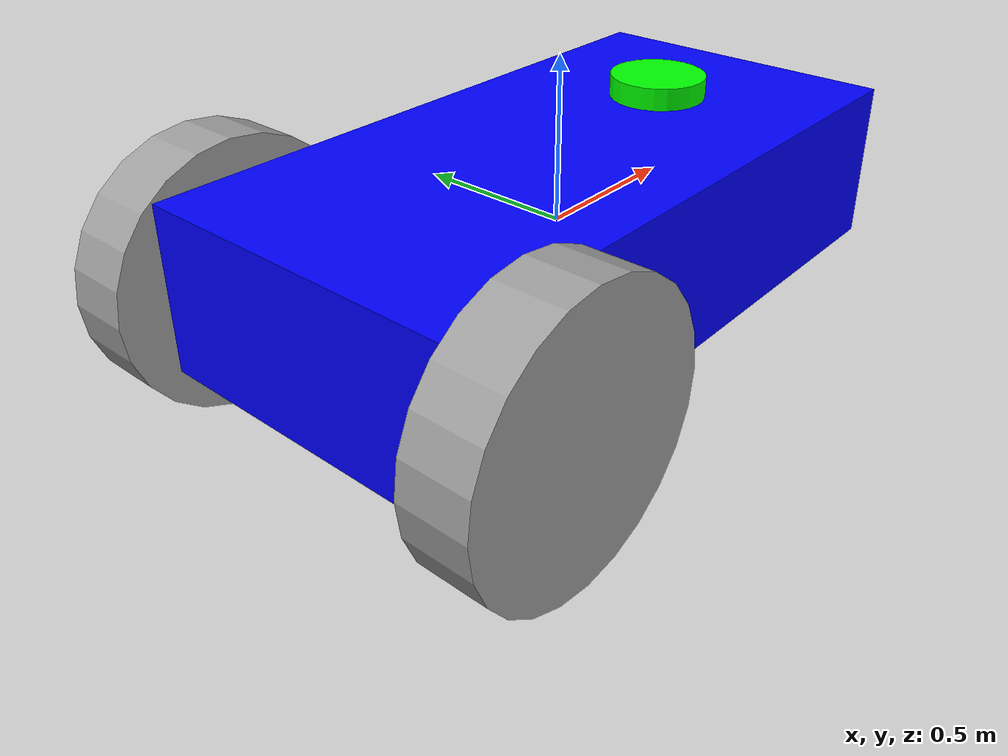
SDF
<sdf version='1.11'>
  <model name='sam_bot'>
    <link name='base_link'>
      <inertial>
        <pose>0.31373248067024662 0 -0.098709864301789241 0 0 0</pose>
        <mass>2.2439499999999999</mass>
        <inertia>
          <ixx>7.7400872650571539</ixx>
          <ixy>0</ixy>
          <ixz>0.079758255531540367</ixz>
          <iyy>8.2579235986653003</iyy>
          <iyz>0</iyz>
          <izz>0.72461933360814645</izz>
        </inertia>
      </inertial>
      <collision name='base_link_collision'>
        <pose>0 0 0 0 0 0</pose>
        <geometry>
          <box>
            <size>2 1 0.5</size>
          </box>
        </geometry>
        <surface>
          <contact>
            <ode/>
          </contact>
          <friction>
            <ode/>
          </friction>
        </surface>
      </collision>
      <collision name='base_link_fixed_joint_lump__lidar_link_collision_1'>
        <pose>0.5 0 0.28499999999999998 0 0 0</pose>
        <geometry>
          <cylinder>
            <length>0.070000000000000007</length>
            <radius>0.14999999999999999</radius>
          </cylinder>
        </geometry>
        <surface>
          <contact>
            <ode/>
          </contact>
          <friction>
            <ode/>
          </friction>
        </surface>
      </collision>
      <visual name='base_link_visual'>
        <pose>0 0 0 0 0 0</pose>
        <geometry>
          <box>
            <size>2 1 0.5</size>
          </box>
        </geometry>
        <material>
          <diffuse>0 0 1 1</diffuse>
          <ambient>0 0 1 1</ambient>
        </material>
      </visual>
      <visual name='base_link_fixed_joint_lump__front_caster_visual_1'>
        <pose>0.65400000000000003 0 -0.25 0 0 0</pose>
        <geometry>
          <sphere>
            <radius>0.20000000000000001</radius>
          </sphere>
        </geometry>
        <material>
          <diffuse>1 0 0 1</diffuse>
          <ambient>1 0 0 1</ambient>
        </material>
      </visual>
      <visual name='base_link_fixed_joint_lump__lidar_link_visual_2'>
        <pose>0.5 0 0.28499999999999998 0 0 0</pose>
        <geometry>
          <cylinder>
            <length>0.070000000000000007</length>
            <radius>0.14999999999999999</radius>
          </cylinder>
        </geometry>
        <material>
          <diffuse>0 1 0 1</diffuse>
          <ambient>0 1 0 1</ambient>
        </material>
      </visual>
      <sensor name='imu_sensor' type='imu'>
        <always_on>true</always_on>
        <topic>base_imu</topic>
        <visualize>true</visualize>
        <imu>
          <angular_velocity>
            <x>
              <noise type='gaussian'>
                <mean>0</mean>
                <stddev>0.00020000000000000001</stddev>
                <bias_mean>7.5000000000000002e-06</bias_mean>
                <bias_stddev>7.9999999999999996e-07</bias_stddev>
              </noise>
            </x>
            <y>
              <noise type='gaussian'>
                <mean>0</mean>
                <stddev>0.00020000000000000001</stddev>
                <bias_mean>7.5000000000000002e-06</bias_mean>
                <bias_stddev>7.9999999999999996e-07</bias_stddev>
              </noise>
            </y>
            <z>
              <noise type='gaussian'>
                <mean>0</mean>
                <stddev>0.00020000000000000001</stddev>
                <bias_mean>7.5000000000000002e-06</bias_mean>
                <bias_stddev>7.9999999999999996e-07</bias_stddev>
              </noise>
            </z>
          </angular_velocity>
          <linear_acceleration>
            <x>
              <noise type='gaussian'>
                <mean>0</mean>
                <stddev>0.017000000000000001</stddev>
                <bias_mean>0.10000000000000001</bias_mean>
                <bias_stddev>0.001</bias_stddev>
              </noise>
            </x>
            <y>
              <noise type='gaussian'>
                <mean>0</mean>
                <stddev>0.017000000000000001</stddev>
                <bias_mean>0.10000000000000001</bias_mean>
                <bias_stddev>0.001</bias_stddev>
              </noise>
            </y>
            <z>
              <noise type='gaussian'>
                <mean>0</mean>
                <stddev>0.017000000000000001</stddev>
                <bias_mean>0.10000000000000001</bias_mean>
                <bias_stddev>0.001</bias_stddev>
              </noise>
            </z>
          </linear_acceleration>
        </imu>
      </sensor>
      <sensor name='lidar' type='ray'>
        <topic>body_lidar</topic>
        <always_on>true</always_on>
        <visualize>true</visualize>
        <update_rate>5</update_rate>
        <lidar>
          <scan>
            <horizontal>
              <samples>640</samples>
              <resolution>1</resolution>
              <min_angle>-2.6179963000000002</min_angle>
              <max_angle>2.6179963000000002</max_angle>
            </horizontal>
            <vertical>
              <samples>16</samples>
              <min_angle>-0.261799</min_angle>
              <max_angle>0.261799</max_angle>
              <resolution>1</resolution>
            </vertical>
          </scan>
          <range>
            <min>0.12</min>
            <max>3.5</max>
            <resolution>0.014999999999999999</resolution>
          </range>
          <noise>
            <type>gaussian</type>
            <mean>0</mean>
            <stddev>0.01</stddev>
          </noise>
        </lidar>
        <pose>0.5 0 0.28499999999999998 0 0 0</pose>
      </sensor>
    </link>
    <joint name='drivewhl_l_joint' type='revolute'>
      <pose relative_to='base_link'>-0.75 0.59999999999999998 -0.050000000000000003 0 0 0</pose>
      <parent>base_link</parent>
      <child>drivewhl_l_link</child>
      <axis>
        <xyz>0 1 0</xyz>
        <limit>
          <lower>-inf</lower>
          <upper>inf</upper>
        </limit>
        <dynamics>
          <spring_reference>0</spring_reference>
          <spring_stiffness>0</spring_stiffness>
        </dynamics>
      </axis>
    </joint>
    <link name='drivewhl_l_link'>
      <pose relative_to='drivewhl_l_joint'>0 0 0 0 0 0</pose>
      <inertial>
        <pose>0 0 0 0 0 0</pose>
        <mass>1</mass>
        <inertia>
          <ixx>0.043333000000000003</ixx>
          <ixy>0</ixy>
          <ixz>0</ixz>
          <iyy>0.043333000000000003</iyy>
          <iyz>0</iyz>
          <izz>0.080000000000000002</izz>
        </inertia>
      </inertial>
      <collision name='drivewhl_l_link_fixed_joint_lump__collision_collision'>
        <pose>0 0 0 0 0 0</pose>
        <geometry>
          <cylinder>
            <length>0.20000000000000001</length>
            <radius>0.40000000000000002</radius>
          </cylinder>
        </geometry>
      </collision>
      <visual name='drivewhl_l_link_visual'>
        <pose>0 0 0 1.5707963267948959 0 0</pose>
        <geometry>
          <cylinder>
            <length>0.20000000000000001</length>
            <radius>0.40000000000000002</radius>
          </cylinder>
        </geometry>
        <material>
          <diffuse>0.625 0.625 0.625 1</diffuse>
          <ambient>0.625 0.625 0.625 1</ambient>
        </material>
      </visual>
    </link>
    <joint name='drivewhl_r_joint' type='revolute'>
      <pose relative_to='base_link'>-0.75 -0.59999999999999998 -0.050000000000000003 0 0 0</pose>
      <parent>base_link</parent>
      <child>drivewhl_r_link</child>
      <axis>
        <xyz>0 1 0</xyz>
        <limit>
          <lower>-inf</lower>
          <upper>inf</upper>
        </limit>
        <dynamics>
          <spring_reference>0</spring_reference>
          <spring_stiffness>0</spring_stiffness>
        </dynamics>
      </axis>
    </joint>
    <link name='drivewhl_r_link'>
      <pose relative_to='drivewhl_r_joint'>0 0 0 0 0 0</pose>
      <inertial>
        <pose>0 0 0 0 0 0</pose>
        <mass>1</mass>
        <inertia>
          <ixx>0.043333000000000003</ixx>
          <ixy>0</ixy>
          <ixz>0</ixz>
          <iyy>0.043333000000000003</iyy>
          <iyz>0</iyz>
          <izz>0.080000000000000002</izz>
        </inertia>
      </inertial>
      <collision name='drivewhl_r_link_fixed_joint_lump__collision_collision'>
        <pose>0 0 0 0 0 0</pose>
        <geometry>
          <cylinder>
            <length>0.20000000000000001</length>
            <radius>0.40000000000000002</radius>
          </cylinder>
        </geometry>
      </collision>
      <visual name='drivewhl_r_link_visual'>
        <pose>0 0 0 1.5707963267948959 0 0</pose>
        <geometry>
          <cylinder>
            <length>0.20000000000000001</length>
            <radius>0.40000000000000002</radius>
          </cylinder>
        </geometry>
        <material>
          <diffuse>0.625 0.625 0.625 1</diffuse>
          <ambient>0.625 0.625 0.625 1</ambient>
        </material>
      </visual>
    </link>
    <plugin name='gz::sim::systems::DiffDrive' filename='gz-sim-diff-drive-system'>
      <left_joint>drivewhl_l_joint</left_joint>
      <right_joint>drivewhl_r_joint</right_joint>
      <wheel_separation>1.2</wheel_separation>
      <wheel_radius>0.4</wheel_radius>
      <topic>cmd_vel</topic>
      <frame_id>odom</frame_id>
      <child_frame_id>base_link</child_frame_id>
    </plugin>
    <frame name='base_joint' attached_to='base_link'>
      <pose>0 0 -0.45000000000000001 0 0 0</pose>
    </frame>
    <frame name='base_footprint' attached_to='base_joint'>
      <pose>0 0 0 0 0 0</pose>
    </frame>
    <frame name='caster_joint' attached_to='base_link'>
      <pose>0.65400000000000003 0 -0.25 0 0 0</pose>
    </frame>
    <frame name='front_caster' attached_to='caster_joint'>
      <pose>0 0 0 0 0 0</pose>
    </frame>
    <frame name='lidar_joint' attached_to='base_link'>
      <pose>0.5 0 0.28499999999999998 0 0 0</pose>
    </frame>
    <frame name='lidar_link' attached_to='lidar_joint'>
      <pose>0 0 0 0 0 0</pose>
    </frame>
  </model>
</sdf>
